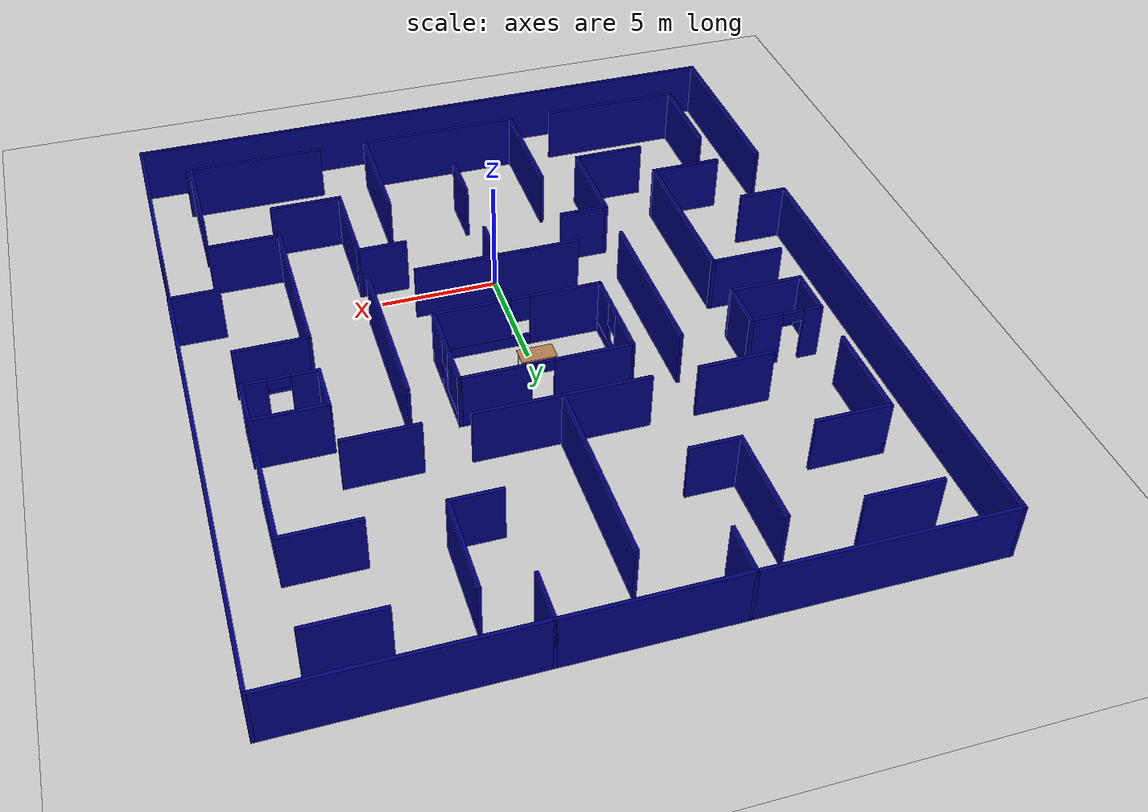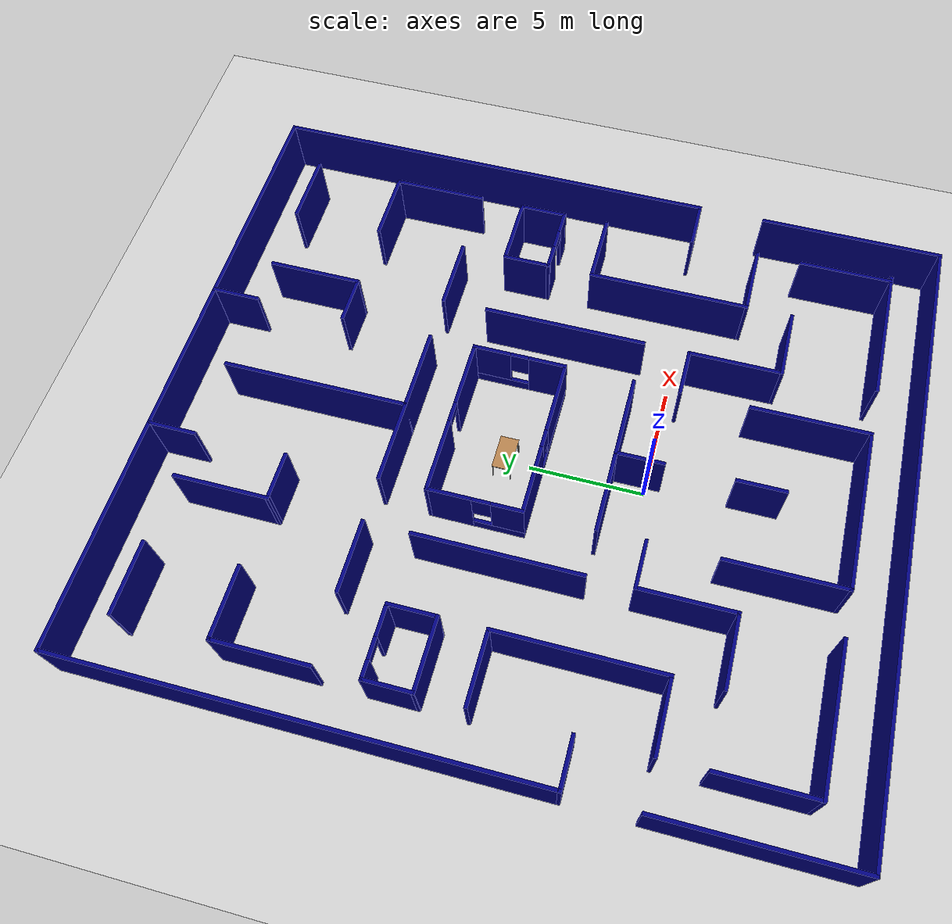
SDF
<sdf version="1.6">
 <world name="default">
  <model name="ground_plane">
   <static>1</static>
   <link name="link">
    <collision name="collision">
     <geometry><plane><normal>0 0 1</normal><size>100 100</size></plane></geometry>
     <surface><friction><ode><mu>100</mu><mu2>50</mu2></ode></friction></surface>
    </collision>
    <visual name="visual">
     <cast_shadows>0</cast_shadows>
     <geometry><plane><normal>0 0 1</normal><size>100 100</size></plane></geometry>
     <material>
      <script><uri>file://media/materials/scripts/gazebo.material</uri><name>Gazebo/Grey</name></script>
     </material>
    </visual>
   </link>
  </model>
  <model name="maze">
   <pose>0.267144 4.9154 0.2059 0 -0 0</pose>
   <link name="Wall_0">
    <collision name="Wall_0_Collision">
     <geometry><box><size>27.14 0.15 2.5</size></box></geometry>
     <pose>0 0 1.25 0 -0 0</pose>
    </collision>
    <visual name="Wall_0_Visual">
     <pose>0 0 1.25 0 -0 0</pose>
     <geometry><box><size>27.14 0.15 2.5</size></box></geometry>
     <material>
      <script><uri>file://media/materials/scripts/gazebo.material</uri><name>Gazebo/Grey</name></script>
      <ambient>0 0 0.498039 1</ambient>
     </material>
     <meta><layer>0</layer></meta>
    </visual>
    <pose>0.004974 -15.5 0 0 -0 0.000741</pose>
   </link>
   <link name="Wall_10">
    <collision name="Wall_10_Collision">
     <geometry><box><size>2.15 0.15 2.5</size></box></geometry>
     <pose>0 0 1.25 0 -0 0</pose>
    </collision>
    <visual name="Wall_10_Visual">
     <pose>0 0 1.25 0 -0 0</pose>
     <geometry><box><size>2.15 0.15 2.5</size></box></geometry>
     <material>
      <script><uri>file://media/materials/scripts/gazebo.material</uri><name>Gazebo/Grey</name></script>
      <ambient>0 0 0.498039 1</ambient>
     </material>
     <meta><layer>0</layer></meta>
    </visual>
    <pose>-2.6e-05 -9.48997 0 0 -0 1.5708</pose>
   </link>
   <link name="Wall_12">
    <collision name="Wall_12_Collision">
     <geometry><box><size>5.15 0.15 2.5</size></box></geometry>
     <pose>0 0 1.25 0 -0 0</pose>
    </collision>
    <visual name="Wall_12_Visual">
     <pose>0 0 1.25 0 -0 0</pose>
     <geometry><box><size>5.15 0.15 2.5</size></box></geometry>
     <material>
      <script><uri>file://media/materials/scripts/gazebo.material</uri><name>Gazebo/Grey</name></script>
      <ambient>0 0 0.498039 1</ambient>
     </material>
     <meta><layer>0</layer></meta>
    </visual>
    <pose>3.49997 -10.99 0 0 -0 1.5708</pose>
   </link>
   <link name="Wall_14">
    <collision name="Wall_14_Collision">
     <geometry><box><size>5.15 0.15 2.5</size></box></geometry>
     <pose>0 0 1.25 0 -0 0</pose>
    </collision>
    <visual name="Wall_14_Visual">
     <pose>0 0 1.25 0 -0 0</pose>
     <geometry><box><size>5.15 0.15 2.5</size></box></geometry>
     <material>
      <script><uri>file://media/materials/scripts/gazebo.material</uri><name>Gazebo/Grey</name></script>
      <ambient>0 0 0.498039 1</ambient>
     </material>
     <meta><layer>0</layer></meta>
    </visual>
    <pose>-3.50003 -10.99 0 0 -0 1.5708</pose>
   </link>
   <link name="Wall_16">
    <collision name="Wall_16_Collision">
     <geometry><box><size>6.15 0.15 2.5</size></box></geometry>
     <pose>0 0 1.25 0 -0 0</pose>
    </collision>
    <visual name="Wall_16_Visual">
     <pose>0 0 1.25 0 -0 0</pose>
     <geometry><box><size>6.15 0.15 2.5</size></box></geometry>
     <material>
      <script><uri>file://media/materials/scripts/gazebo.material</uri><name>Gazebo/Grey</name></script>
      <ambient>0 0 0.498039 1</ambient>
     </material>
     <meta><layer>0</layer></meta>
    </visual>
    <pose>-8.50003 -13.4895 0 0 -0 0.000167</pose>
   </link>
   <link name="Wall_18">
    <collision name="Wall_18_Collision">
     <geometry><box><size>2.15 0.15 2.5</size></box></geometry>
     <pose>0 0 1.25 0 -0 0</pose>
    </collision>
    <visual name="Wall_18_Visual">
     <pose>0 0 1.25 0 -0 0</pose>
     <geometry><box><size>2.15 0.15 2.5</size></box></geometry>
     <material>
      <script><uri>file://media/materials/scripts/gazebo.material</uri><name>Gazebo/Grey</name></script>
      <ambient>0 0 0.498039 1</ambient>
     </material>
     <meta><layer>0</layer></meta>
    </visual>
    <pose>-12.5 -4.48997 0 0 -0 0</pose>
   </link>
   <link name="Wall_188">
    <collision name="Wall_188_Collision">
     <geometry><box><size>4.15 0.15 2.5</size></box></geometry>
     <pose>0 0 1.25 0 -0 0</pose>
    </collision>
    <visual name="Wall_188_Visual">
     <pose>0 0 1.25 0 -0 0</pose>
     <geometry><box><size>4.15 0.15 2.5</size></box></geometry>
     <material>
      <script><uri>file://media/materials/scripts/gazebo.material</uri><name>Gazebo/Grey</name></script>
      <ambient>0 0 0.498039 1</ambient>
     </material>
     <meta><layer>0</layer></meta>
    </visual>
    <pose>-5.50003 11.51 0 0 -0 1.5708</pose>
   </link>
   <link name="Wall_191">
    <collision name="Wall_191_Collision">
     <geometry><box><size>2.15 0.15 2.5</size></box></geometry>
     <pose>0 0 1.25 0 -0 0</pose>
    </collision>
    <visual name="Wall_191_Visual">
     <pose>0 0 1.25 0 -0 0</pose>
     <geometry><box><size>2.15 0.15 2.5</size></box></geometry>
     <material>
      <script><uri>file://media/materials/scripts/gazebo.material</uri><name>Gazebo/Grey</name></script>
      <ambient>0 0 0.498039 1</ambient>
     </material>
     <meta><layer>0</layer></meta>
    </visual>
    <pose>-4.50003 9.51003 0 0 -0 0</pose>
   </link>
   <link name="Wall_193">
    <collision name="Wall_193_Collision">
     <geometry><box><size>2.15 0.15 2.5</size></box></geometry>
     <pose>0 0 1.25 0 -0 0</pose>
    </collision>
    <visual name="Wall_193_Visual">
     <pose>0 0 1.25 0 -0 0</pose>
     <geometry><box><size>2.15 0.15 2.5</size></box></geometry>
     <material>
      <script><uri>file://media/materials/scripts/gazebo.material</uri><name>Gazebo/Grey</name></script>
      <ambient>0 0 0.498039 1</ambient>
     </material>
     <meta><layer>0</layer></meta>
    </visual>
    <pose>-3.50003 14.51 0 0 -0 1.5708</pose>
   </link>
   <link name="Wall_195">
    <collision name="Wall_195_Collision">
     <geometry><box><size>2.15 0.15 2.5</size></box></geometry>
     <pose>0 0 1.25 0 -0 0</pose>
    </collision>
    <visual name="Wall_195_Visual">
     <pose>0 0 1.25 0 -0 0</pose>
     <geometry><box><size>2.15 0.15 2.5</size></box></geometry>
     <material>
      <script><uri>file://media/materials/scripts/gazebo.material</uri><name>Gazebo/Grey</name></script>
      <ambient>0 0 0.498039 1</ambient>
     </material>
     <meta><layer>0</layer></meta>
    </visual>
    <pose>3.49997 14.51 0 0 0 -1.5708</pose>
   </link>
   <link name="Wall_197">
    <pose>-2.6e-05 -0.489973 0 0 -0 0</pose>
    <visual name="Wall_197_Visual_0">
     <pose>-2.03649 0 1.25 0 -0 0</pose>
     <geometry><box><size>3.07701 0.15 2.5</size></box></geometry>
     <material>
      <script><uri>file://media/materials/scripts/gazebo.material</uri><name>Gazebo/Grey</name></script>
      <ambient>0 0 0.498039 1</ambient>
     </material>
     <meta><layer>0</layer></meta>
    </visual>
    <collision name="Wall_197_Collision_0">
     <geometry><box><size>3.07701 0.15 2.5</size></box></geometry>
     <pose>-2.03649 0 1.25 0 -0 0</pose>
    </collision>
    <visual name="Wall_197_Visual_1">
     <pose>1.53851 0 0.25 0 -0 0</pose>
     <geometry><box><size>4.07299 0.15 0.5</size></box></geometry>
     <material>
      <script><uri>file://media/materials/scripts/gazebo.material</uri><name>Gazebo/Grey</name></script>
      <ambient>0 0 0.498039 1</ambient>
     </material>
     <meta><layer>0</layer></meta>
    </visual>
    <collision name="Wall_197_Collision_1">
     <geometry><box><size>4.07299 0.15 0.5</size></box></geometry>
     <pose>1.53851 0 0.25 0 -0 0</pose>
    </collision>
    <visual name="Wall_197_Visual_2">
     <pose>1.9385 0 1.5 0 -0 0</pose>
     <geometry><box><size>3.27299 0.15 2</size></box></geometry>
     <material>
      <script><uri>file://media/materials/scripts/gazebo.material</uri><name>Gazebo/Grey</name></script>
      <ambient>0 0 0.498039 1</ambient>
     </material>
     <meta><layer>0</layer></meta>
    </visual>
    <collision name="Wall_197_Collision_2">
     <geometry><box><size>3.27299 0.15 2</size></box></geometry>
     <pose>1.9385 0 1.5 0 -0 0</pose>
    </collision>
    <visual name="Wall_197_Visual_3">
     <pose>-0.097991 0 1.9 0 -0 0</pose>
     <geometry><box><size>0.8 0.15 1.2</size></box></geometry>
     <material>
      <script><uri>file://media/materials/scripts/gazebo.material</uri><name>Gazebo/Grey</name></script>
      <ambient>0 0 0.498039 1</ambient>
     </material>
     <meta><layer>0</layer></meta>
    </visual>
    <collision name="Wall_197_Collision_3">
     <geometry><box><size>0.8 0.15 1.2</size></box></geometry>
     <pose>-0.097991 0 1.9 0 -0 0</pose>
    </collision>
   </link>
   <link name="Wall_199">
    <pose>3.49997 1.51003 0 0 -0 1.5708</pose>
    <visual name="Wall_199_Visual_0">
     <pose>-1.2422 0 1.25 0 -0 0</pose>
     <geometry><box><size>1.6656 0.15 2.5</size></box></geometry>
     <material>
      <script><uri>file://media/materials/scripts/gazebo.material</uri><name>Gazebo/Grey</name></script>
      <ambient>0 0 0.498039 1</ambient>
     </material>
     <meta><layer>0</layer></meta>
    </visual>
    <collision name="Wall_199_Collision_0">
     <geometry><box><size>1.6656 0.15 2.5</size></box></geometry>
     <pose>-1.2422 0 1.25 0 -0 0</pose>
    </collision>
    <visual name="Wall_199_Visual_1">
     <pose>0.832802 0 0.25 0 -0 0</pose>
     <geometry><box><size>2.4844 0.15 0.5</size></box></geometry>
     <material>
      <script><uri>file://media/materials/scripts/gazebo.material</uri><name>Gazebo/Grey</name></script>
      <ambient>0 0 0.498039 1</ambient>
     </material>
     <meta><layer>0</layer></meta>
    </visual>
    <collision name="Wall_199_Collision_1">
     <geometry><box><size>2.4844 0.15 0.5</size></box></geometry>
     <pose>0.832802 0 0.25 0 -0 0</pose>
    </collision>
    <visual name="Wall_199_Visual_2">
     <pose>1.2328 0 1.5 0 -0 0</pose>
     <geometry><box><size>1.6844 0.15 2</size></box></geometry>
     <material>
      <script><uri>file://media/materials/scripts/gazebo.material</uri><name>Gazebo/Grey</name></script>
      <ambient>0 0 0.498039 1</ambient>
     </material>
     <meta><layer>0</layer></meta>
    </visual>
    <collision name="Wall_199_Collision_2">
     <geometry><box><size>1.6844 0.15 2</size></box></geometry>
     <pose>1.2328 0 1.5 0 -0 0</pose>
    </collision>
    <visual name="Wall_199_Visual_3">
     <pose>-0.009396 0 1.9 0 -0 0</pose>
     <geometry><box><size>0.8 0.15 1.2</size></box></geometry>
     <material>
      <script><uri>file://media/materials/scripts/gazebo.material</uri><name>Gazebo/Grey</name></script>
      <ambient>0 0 0.498039 1</ambient>
     </material>
     <meta><layer>0</layer></meta>
    </visual>
    <collision name="Wall_199_Collision_3">
     <geometry><box><size>0.8 0.15 1.2</size></box></geometry>
     <pose>-0.009396 0 1.9 0 -0 0</pose>
    </collision>
   </link>
   <link name="Wall_2">
    <collision name="Wall_2_Collision">
     <geometry><box><size>8.15 0.15 2.5</size></box></geometry>
     <pose>0 0 1.25 0 -0 0</pose>
    </collision>
    <visual name="Wall_2_Visual">
     <pose>0 0 1.25 0 -0 0</pose>
     <geometry><box><size>8.15 0.15 2.5</size></box></geometry>
     <material>
      <script><uri>file://media/materials/scripts/gazebo.material</uri><name>Gazebo/Grey</name></script>
      <ambient>0 0 0.498039 1</ambient>
     </material>
     <meta><layer>0</layer></meta>
    </visual>
    <pose>-13.5 -11.49 0 0 -0 1.5708</pose>
   </link>
   <link name="Wall_20">
    <collision name="Wall_20_Collision">
     <geometry><box><size>20.15 0.15 2.5</size></box></geometry>
     <pose>0 0 1.25 0 -0 0</pose>
    </collision>
    <visual name="Wall_20_Visual">
     <pose>0 0 1.25 0 -0 0</pose>
     <geometry><box><size>20.15 0.15 2.5</size></box></geometry>
     <material>
      <script><uri>file://media/materials/scripts/gazebo.material</uri><name>Gazebo/Grey</name></script>
      <ambient>0 0 0.498039 1</ambient>
     </material>
     <meta><layer>0</layer></meta>
    </visual>
    <pose>13.5 5.51003 0 0 -0 1.5708</pose>
   </link>
   <link name="Wall_201">
    <pose>-3.50003 1.51003 0 0 0 -1.5708</pose>
    <visual name="Wall_201_Visual_0">
     <pose>-1.09685 0 1.25 0 -0 0</pose>
     <geometry><box><size>1.9563 0.15 2.5</size></box></geometry>
     <material>
      <script><uri>file://media/materials/scripts/gazebo.material</uri><name>Gazebo/Grey</name></script>
      <ambient>0 0 0.498039 1</ambient>
     </material>
     <meta><layer>0</layer></meta>
    </visual>
    <collision name="Wall_201_Collision_0">
     <geometry><box><size>1.9563 0.15 2.5</size></box></geometry>
     <pose>-1.09685 0 1.25 0 -0 0</pose>
    </collision>
    <visual name="Wall_201_Visual_1">
     <pose>0.97815 0 0.25 0 -0 0</pose>
     <geometry><box><size>2.1937 0.15 0.5</size></box></geometry>
     <material>
      <script><uri>file://media/materials/scripts/gazebo.material</uri><name>Gazebo/Grey</name></script>
      <ambient>0 0 0.498039 1</ambient>
     </material>
     <meta><layer>0</layer></meta>
    </visual>
    <collision name="Wall_201_Collision_1">
     <geometry><box><size>2.1937 0.15 0.5</size></box></geometry>
     <pose>0.97815 0 0.25 0 -0 0</pose>
    </collision>
    <visual name="Wall_201_Visual_2">
     <pose>1.37815 0 1.5 0 -0 0</pose>
     <geometry><box><size>1.3937 0.15 2</size></box></geometry>
     <material>
      <script><uri>file://media/materials/scripts/gazebo.material</uri><name>Gazebo/Grey</name></script>
      <ambient>0 0 0.498039 1</ambient>
     </material>
     <meta><layer>0</layer></meta>
    </visual>
    <collision name="Wall_201_Collision_2">
     <geometry><box><size>1.3937 0.15 2</size></box></geometry>
     <pose>1.37815 0 1.5 0 -0 0</pose>
    </collision>
    <visual name="Wall_201_Visual_3">
     <pose>0.2813 0 1.9 0 -0 0</pose>
     <geometry><box><size>0.8 0.15 1.2</size></box></geometry>
     <material>
      <script><uri>file://media/materials/scripts/gazebo.material</uri><name>Gazebo/Grey</name></script>
      <ambient>0 0 0.498039 1</ambient>
     </material>
     <meta><layer>0</layer></meta>
    </visual>
    <collision name="Wall_201_Collision_3">
     <geometry><box><size>0.8 0.15 1.2</size></box></geometry>
     <pose>0.2813 0 1.9 0 -0 0</pose>
    </collision>
   </link>
   <link name="Wall_202">
    <collision name="Wall_202_Collision">
     <geometry><box><size>0.15 0.15 2.5</size></box></geometry>
     <pose>0 0 1.25 0 -0 0</pose>
    </collision>
    <visual name="Wall_202_Visual">
     <pose>0 0 1.25 0 -0 0</pose>
     <geometry><box><size>0.15 0.15 2.5</size></box></geometry>
     <material>
      <script><uri>file://media/materials/scripts/gazebo.material</uri><name>Gazebo/Grey</name></script>
      <ambient>0 0 0.498039 1</ambient>
     </material>
     <meta><layer>0</layer></meta>
    </visual>
    <pose>-3.50003 -0.489973 0 0 -0 0</pose>
   </link>
   <link name="Wall_204">
    <collision name="Wall_204_Collision">
     <geometry><box><size>4.15 0.15 2.5</size></box></geometry>
     <pose>0 0 1.25 0 -0 0</pose>
    </collision>
    <visual name="Wall_204_Visual">
     <pose>0 0 1.25 0 -0 0</pose>
     <geometry><box><size>4.15 0.15 2.5</size></box></geometry>
     <material>
      <script><uri>file://media/materials/scripts/gazebo.material</uri><name>Gazebo/Grey</name></script>
      <ambient>0 0 0.498039 1</ambient>
     </material>
     <meta><layer>0</layer></meta>
    </visual>
    <pose>5.49997 11.51 0 0 -0 1.5708</pose>
   </link>
   <link name="Wall_206">
    <collision name="Wall_206_Collision">
     <geometry><box><size>2.15 0.15 2.5</size></box></geometry>
     <pose>0 0 1.25 0 -0 0</pose>
    </collision>
    <visual name="Wall_206_Visual">
     <pose>0 0 1.25 0 -0 0</pose>
     <geometry><box><size>2.15 0.15 2.5</size></box></geometry>
     <material>
      <script><uri>file://media/materials/scripts/gazebo.material</uri><name>Gazebo/Grey</name></script>
      <ambient>0 0 0.498039 1</ambient>
     </material>
     <meta><layer>0</layer></meta>
    </visual>
    <pose>4.49997 9.51003 0 0 -0 0</pose>
   </link>
   <link name="Wall_208">
    <collision name="Wall_208_Collision">
     <geometry><box><size>8.15 0.15 2.5</size></box></geometry>
     <pose>0 0 1.25 0 -0 0</pose>
    </collision>
    <visual name="Wall_208_Visual">
     <pose>0 0 1.25 0 -0 0</pose>
     <geometry><box><size>8.15 0.15 2.5</size></box></geometry>
     <material>
      <script><uri>file://media/materials/scripts/gazebo.material</uri><name>Gazebo/Grey</name></script>
      <ambient>0 0 0.498039 1</ambient>
     </material>
     <meta><layer>0</layer></meta>
    </visual>
    <pose>-2.6e-05 9.51003 0 0 -0 1.5708</pose>
   </link>
   <link name="Wall_210">
    <collision name="Wall_210_Collision">
     <geometry><box><size>7.15 0.15 2.5</size></box></geometry>
     <pose>0 0 1.25 0 -0 0</pose>
    </collision>
    <visual name="Wall_210_Visual">
     <pose>0 0 1.25 0 -0 0</pose>
     <geometry><box><size>7.15 0.15 2.5</size></box></geometry>
     <material>
      <script><uri>file://media/materials/scripts/gazebo.material</uri><name>Gazebo/Grey</name></script>
      <ambient>0 0 0.498039 1</ambient>
     </material>
     <meta><layer>0</layer></meta>
    </visual>
    <pose>-2.6e-05 5.51003 0 0 -0 0</pose>
   </link>
   <link name="Wall_212">
    <pose>-2.6e-05 3.51003 0 0 -0 0</pose>
    <visual name="Wall_212_Visual_0">
     <pose>-1.93418 0 1.25 0 -0 0</pose>
     <geometry><box><size>3.28164 0.15 2.5</size></box></geometry>
     <material>
      <script><uri>file://media/materials/scripts/gazebo.material</uri><name>Gazebo/Grey</name></script>
      <ambient>0 0 0.498039 1</ambient>
     </material>
     <meta><layer>0</layer></meta>
    </visual>
    <collision name="Wall_212_Collision_0">
     <geometry><box><size>3.28164 0.15 2.5</size></box></geometry>
     <pose>-1.93418 0 1.25 0 -0 0</pose>
    </collision>
    <visual name="Wall_212_Visual_1">
     <pose>2.09082 0 1.25 0 -0 0</pose>
     <geometry><box><size>2.96836 0.15 2.5</size></box></geometry>
     <material>
      <script><uri>file://media/materials/scripts/gazebo.material</uri><name>Gazebo/Grey</name></script>
      <ambient>0 0 0.498039 1</ambient>
     </material>
     <meta><layer>0</layer></meta>
    </visual>
    <collision name="Wall_212_Collision_1">
     <geometry><box><size>2.96836 0.15 2.5</size></box></geometry>
     <pose>2.09082 0 1.25 0 -0 0</pose>
    </collision>
    <visual name="Wall_212_Visual_2">
     <pose>0.156638 0 2.25 0 -0 0</pose>
     <geometry><box><size>0.9 0.15 0.5</size></box></geometry>
     <material>
      <script><uri>file://media/materials/scripts/gazebo.material</uri><name>Gazebo/Grey</name></script>
      <ambient>0 0 0.498039 1</ambient>
     </material>
     <meta><layer>0</layer></meta>
    </visual>
    <collision name="Wall_212_Collision_2">
     <geometry><box><size>0.9 0.15 0.5</size></box></geometry>
     <pose>0.156638 0 2.25 0 -0 0</pose>
    </collision>
   </link>
   <link name="Wall_215">
    <collision name="Wall_215_Collision">
     <geometry><box><size>3.15 0.15 2.5</size></box></geometry>
     <pose>0 0 1.25 0 -0 0</pose>
    </collision>
    <visual name="Wall_215_Visual">
     <pose>0 0 1.25 0 -0 0</pose>
     <geometry><box><size>3.15 0.15 2.5</size></box></geometry>
     <material>
      <script><uri>file://media/materials/scripts/gazebo.material</uri><name>Gazebo/Grey</name></script>
      <ambient>0 0 0.498039 1</ambient>
     </material>
     <meta><layer>0</layer></meta>
    </visual>
    <pose>6.99997 5.51003 0 0 -0 0</pose>
   </link>
   <link name="Wall_217">
    <collision name="Wall_217_Collision">
     <geometry><box><size>7.15 0.15 2.5</size></box></geometry>
     <pose>0 0 1.25 0 -0 0</pose>
    </collision>
    <visual name="Wall_217_Visual">
     <pose>0 0 1.25 0 -0 0</pose>
     <geometry><box><size>7.15 0.15 2.5</size></box></geometry>
     <material>
      <script><uri>file://media/materials/scripts/gazebo.material</uri><name>Gazebo/Grey</name></script>
      <ambient>0 0 0.498039 1</ambient>
     </material>
     <meta><layer>0</layer></meta>
    </visual>
    <pose>5.49997 0.010027 0 0 -0 1.5708</pose>
   </link>
   <link name="Wall_219">
    <collision name="Wall_219_Collision">
     <geometry><box><size>3.15 0.15 2.5</size></box></geometry>
     <pose>0 0 1.25 0 -0 0</pose>
    </collision>
    <visual name="Wall_219_Visual">
     <pose>0 0 1.25 0 -0 0</pose>
     <geometry><box><size>3.15 0.15 2.5</size></box></geometry>
     <material>
      <script><uri>file://media/materials/scripts/gazebo.material</uri><name>Gazebo/Grey</name></script>
      <ambient>0 0 0.498039 1</ambient>
     </material>
     <meta><layer>0</layer></meta>
    </visual>
    <pose>9.99997 -0.489973 0 0 -0 0</pose>
   </link>
   <link name="Wall_22">
    <collision name="Wall_22_Collision">
     <geometry><box><size>4.15 0.15 2.5</size></box></geometry>
     <pose>0 0 1.25 0 -0 0</pose>
    </collision>
    <visual name="Wall_22_Visual">
     <pose>0 0 1.25 0 -0 0</pose>
     <geometry><box><size>4.15 0.15 2.5</size></box></geometry>
     <material>
      <script><uri>file://media/materials/scripts/gazebo.material</uri><name>Gazebo/Grey</name></script>
      <ambient>0 0 0.498039 1</ambient>
     </material>
     <meta><layer>0</layer></meta>
    </visual>
    <pose>-11.5 -11.49 0 0 -0 1.5708</pose>
   </link>
   <link name="Wall_221">
    <collision name="Wall_221_Collision">
     <geometry><box><size>7.15 0.15 2.5</size></box></geometry>
     <pose>0 0 1.25 0 -0 0</pose>
    </collision>
    <visual name="Wall_221_Visual">
     <pose>0 0 1.25 0 -0 0</pose>
     <geometry><box><size>7.15 0.15 2.5</size></box></geometry>
     <material>
      <script><uri>file://media/materials/scripts/gazebo.material</uri><name>Gazebo/Grey</name></script>
      <ambient>0 0 0.498039 1</ambient>
     </material>
     <meta><layer>0</layer></meta>
    </visual>
    <pose>8.49997 -3.98997 0 0 -0 1.5708</pose>
   </link>
   <link name="Wall_223">
    <collision name="Wall_223_Collision">
     <geometry><box><size>3.15 0.15 2.5</size></box></geometry>
     <pose>0 0 1.25 0 -0 0</pose>
    </collision>
    <visual name="Wall_223_Visual">
     <pose>0 0 1.25 0 -0 0</pose>
     <geometry><box><size>3.15 0.15 2.5</size></box></geometry>
     <material>
      <script><uri>file://media/materials/scripts/gazebo.material</uri><name>Gazebo/Grey</name></script>
      <ambient>0 0 0.498039 1</ambient>
     </material>
     <meta><layer>0</layer></meta>
    </visual>
    <pose>9.99997 -7.48997 0 0 -0 0</pose>
   </link>
   <link name="Wall_225">
    <collision name="Wall_225_Collision">
     <geometry><box><size>2.15 0.15 2.5</size></box></geometry>
     <pose>0 0 1.25 0 -0 0</pose>
    </collision>
    <visual name="Wall_225_Visual">
     <pose>0 0 1.25 0 -0 0</pose>
     <geometry><box><size>2.15 0.15 2.5</size></box></geometry>
     <material>
      <script><uri>file://media/materials/scripts/gazebo.material</uri><name>Gazebo/Grey</name></script>
      <ambient>0 0 0.498039 1</ambient>
     </material>
     <meta><layer>0</layer></meta>
    </visual>
    <pose>12.5 -4.48997 0 0 -0 0</pose>
   </link>
   <link name="Wall_227">
    <collision name="Wall_227_Collision">
     <geometry><box><size>2.15 0.15 2.5</size></box></geometry>
     <pose>0 0 1.25 0 -0 0</pose>
    </collision>
    <visual name="Wall_227_Visual">
     <pose>0 0 1.25 0 -0 0</pose>
     <geometry><box><size>2.15 0.15 2.5</size></box></geometry>
     <material>
      <script><uri>file://media/materials/scripts/gazebo.material</uri><name>Gazebo/Grey</name></script>
      <ambient>0 0 0.498039 1</ambient>
     </material>
     <meta><layer>0</layer></meta>
    </visual>
    <pose>8.49997 2.51003 0 0 -0 1.5708</pose>
   </link>
   <link name="Wall_229">
    <collision name="Wall_229_Collision">
     <geometry><box><size>2.15 0.15 2.5</size></box></geometry>
     <pose>0 0 1.25 0 -0 0</pose>
    </collision>
    <visual name="Wall_229_Visual">
     <pose>0 0 1.25 0 -0 0</pose>
     <geometry><box><size>2.15 0.15 2.5</size></box></geometry>
     <material>
      <script><uri>file://media/materials/scripts/gazebo.material</uri><name>Gazebo/Grey</name></script>
      <ambient>0 0 0.498039 1</ambient>
     </material>
     <meta><layer>0</layer></meta>
    </visual>
    <pose>11.5 2.51003 0 0 -0 1.5708</pose>
   </link>
   <link name="Wall_231">
    <pose>9.99997 1.51003 0 0 -0 0</pose>
    <visual name="Wall_231_Visual_0">
     <pose>-0.98595 0 1.25 0 -0 0</pose>
     <geometry><box><size>1.1781 0.15 2.5</size></box></geometry>
     <material>
      <script><uri>file://media/materials/scripts/gazebo.material</uri><name>Gazebo/Grey</name></script>
      <ambient>0 0 0.498039 1</ambient>
     </material>
     <meta><layer>0</layer></meta>
    </visual>
    <collision name="Wall_231_Collision_0">
     <geometry><box><size>1.1781 0.15 2.5</size></box></geometry>
     <pose>-0.98595 0 1.25 0 -0 0</pose>
    </collision>
    <visual name="Wall_231_Visual_1">
     <pose>1.03905 0 1.25 0 -0 0</pose>
     <geometry><box><size>1.0719 0.15 2.5</size></box></geometry>
     <material>
      <script><uri>file://media/materials/scripts/gazebo.material</uri><name>Gazebo/Grey</name></script>
      <ambient>0 0 0.498039 1</ambient>
     </material>
     <meta><layer>0</layer></meta>
    </visual>
    <collision name="Wall_231_Collision_1">
     <geometry><box><size>1.0719 0.15 2.5</size></box></geometry>
     <pose>1.03905 0 1.25 0 -0 0</pose>
    </collision>
    <visual name="Wall_231_Visual_2">
     <pose>0.053101 0 2.25 0 -0 0</pose>
     <geometry><box><size>0.9 0.15 0.5</size></box></geometry>
     <material>
      <script><uri>file://media/materials/scripts/gazebo.material</uri><name>Gazebo/Grey</name></script>
      <ambient>0 0 0.498039 1</ambient>
     </material>
     <meta><layer>0</layer></meta>
    </visual>
    <collision name="Wall_231_Collision_2">
     <geometry><box><size>0.9 0.15 0.5</size></box></geometry>
     <pose>0.053101 0 2.25 0 -0 0</pose>
    </collision>
   </link>
   <link name="Wall_233">
    <collision name="Wall_233_Collision">
     <geometry><box><size>3.15 0.15 2.5</size></box></geometry>
     <pose>0 0 1.25 0 -0 0</pose>
    </collision>
    <visual name="Wall_233_Visual">
     <pose>0 0 1.25 0 -0 0</pose>
     <geometry><box><size>3.15 0.15 2.5</size></box></geometry>
     <material>
      <script><uri>file://media/materials/scripts/gazebo.material</uri><name>Gazebo/Grey</name></script>
      <ambient>0 0 0.498039 1</ambient>
     </material>
     <meta><layer>0</layer></meta>
    </visual>
    <pose>9.99997 3.51003 0 0 -0 0</pose>
   </link>
   <link name="Wall_235">
    <collision name="Wall_235_Collision">
     <geometry><box><size>3.15 0.15 2.5</size></box></geometry>
     <pose>0 0 1.25 0 -0 0</pose>
    </collision>
    <visual name="Wall_235_Visual">
     <pose>0 0 1.25 0 -0 0</pose>
     <geometry><box><size>3.15 0.15 2.5</size></box></geometry>
     <material>
      <script><uri>file://media/materials/scripts/gazebo.material</uri><name>Gazebo/Grey</name></script>
      <ambient>0 0 0.498039 1</ambient>
     </material>
     <meta><layer>0</layer></meta>
    </visual>
    <pose>9.99997 9.51003 0 0 -0 0</pose>
   </link>
   <link name="Wall_236">
    <collision name="Wall_236_Collision">
     <geometry><box><size>4.15 0.15 2.5</size></box></geometry>
     <pose>0 0 1.25 0 -0 0</pose>
    </collision>
    <visual name="Wall_236_Visual">
     <pose>0 0 1.25 0 -0 0</pose>
     <geometry><box><size>4.15 0.15 2.5</size></box></geometry>
     <material>
      <script><uri>file://media/materials/scripts/gazebo.material</uri><name>Gazebo/Grey</name></script>
      <ambient>0 0 0.498039 1</ambient>
     </material>
     <meta><layer>0</layer></meta>
    </visual>
    <pose>11.5 7.51003 0 0 0 -1.5708</pose>
   </link>
   <link name="Wall_238">
    <collision name="Wall_238_Collision">
     <geometry><box><size>3.15 0.15 2.5</size></box></geometry>
     <pose>0 0 1.25 0 -0 0</pose>
    </collision>
    <visual name="Wall_238_Visual">
     <pose>0 0 1.25 0 -0 0</pose>
     <geometry><box><size>3.15 0.15 2.5</size></box></geometry>
     <material>
      <script><uri>file://media/materials/scripts/gazebo.material</uri><name>Gazebo/Grey</name></script>
      <ambient>0 0 0.498039 1</ambient>
     </material>
     <meta><layer>0</layer></meta>
    </visual>
    <pose>9.99997 13.51 0 0 -0 0</pose>
   </link>
   <link name="Wall_24">
    <collision name="Wall_24_Collision">
     <geometry><box><size>7.15 0.15 2.5</size></box></geometry>
     <pose>0 0 1.25 0 -0 0</pose>
    </collision>
    <visual name="Wall_24_Visual">
     <pose>0 0 1.25 0 -0 0</pose>
     <geometry><box><size>7.15 0.15 2.5</size></box></geometry>
     <material>
      <script><uri>file://media/materials/scripts/gazebo.material</uri><name>Gazebo/Grey</name></script>
      <ambient>0 0 0.498039 1</ambient>
     </material>
     <meta><layer>0</layer></meta>
    </visual>
    <pose>-2.6e-05 -13.49 0 0 -0 0</pose>
   </link>
   <link name="Wall_240">
    <collision name="Wall_240_Collision">
     <geometry><box><size>7.15 0.15 2.5</size></box></geometry>
     <pose>0 0 1.25 0 -0 0</pose>
    </collision>
    <visual name="Wall_240_Visual">
     <pose>0 0 1.25 0 -0 0</pose>
     <geometry><box><size>7.15 0.15 2.5</size></box></geometry>
     <material>
      <script><uri>file://media/materials/scripts/gazebo.material</uri><name>Gazebo/Grey</name></script>
      <ambient>0 0 0.498039 1</ambient>
     </material>
     <meta><layer>0</layer></meta>
    </visual>
    <pose>-2.6e-05 -3.48997 0 0 -0 0</pose>
   </link>
   <link name="Wall_242">
    <collision name="Wall_242_Collision">
     <geometry><box><size>2.15 0.15 2.5</size></box></geometry>
     <pose>0 0 1.25 0 -0 0</pose>
    </collision>
    <visual name="Wall_242_Visual">
     <pose>0 0 1.25 0 -0 0</pose>
     <geometry><box><size>2.15 0.15 2.5</size></box></geometry>
     <material>
      <script><uri>file://media/materials/scripts/gazebo.material</uri><name>Gazebo/Grey</name></script>
      <ambient>0 0 0.498039 1</ambient>
     </material>
     <meta><layer>0</layer></meta>
    </visual>
    <pose>-2.6e-05 -4.48997 0 0 0 -1.5708</pose>
   </link>
   <link name="Wall_26">
    <collision name="Wall_26_Collision">
     <geometry><box><size>6.15 0.15 2.5</size></box></geometry>
     <pose>0 0 1.25 0 -0 0</pose>
    </collision>
    <visual name="Wall_26_Visual">
     <pose>0 0 1.25 0 -0 0</pose>
     <geometry><box><size>6.15 0.15 2.5</size></box></geometry>
     <material>
      <script><uri>file://media/materials/scripts/gazebo.material</uri><name>Gazebo/Grey</name></script>
      <ambient>0 0 0.498039 1</ambient>
     </material>
     <meta><layer>0</layer></meta>
    </visual>
    <pose>8.68456 -13.49 0 0 -0 0</pose>
   </link>
   <link name="Wall_28">
    <collision name="Wall_28_Collision">
     <geometry><box><size>3.15 0.15 2.5</size></box></geometry>
     <pose>0 0 1.25 0 -0 0</pose>
    </collision>
    <visual name="Wall_28_Visual">
     <pose>0 0 1.25 0 -0 0</pose>
     <geometry><box><size>3.15 0.15 2.5</size></box></geometry>
     <material>
      <script><uri>file://media/materials/scripts/gazebo.material</uri><name>Gazebo/Grey</name></script>
      <ambient>0 0 0.498039 1</ambient>
     </material>
     <meta><layer>0</layer></meta>
    </visual>
    <pose>-10 -7.48997 0 0 -0 0</pose>
   </link>
   <link name="Wall_30">
    <collision name="Wall_30_Collision">
     <geometry><box><size>2.15 0.15 2.5</size></box></geometry>
     <pose>0 0 1.25 0 -0 0</pose>
    </collision>
    <visual name="Wall_30_Visual">
     <pose>0 0 1.25 0 -0 0</pose>
     <geometry><box><size>2.15 0.15 2.5</size></box></geometry>
     <material>
      <script><uri>file://media/materials/scripts/gazebo.material</uri><name>Gazebo/Grey</name></script>
      <ambient>0 0 0.498039 1</ambient>
     </material>
     <meta><layer>0</layer></meta>
    </visual>
    <pose>4.49997 -5.48997 0 0 -0 0</pose>
   </link>
   <link name="Wall_32">
    <collision name="Wall_32_Collision">
     <geometry><box><size>3.15 0.15 2.5</size></box></geometry>
     <pose>0 0 1.25 0 -0 0</pose>
    </collision>
    <visual name="Wall_32_Visual">
     <pose>0 0 1.25 0 -0 0</pose>
     <geometry><box><size>3.15 0.15 2.5</size></box></geometry>
     <material>
      <script><uri>file://media/materials/scripts/gazebo.material</uri><name>Gazebo/Grey</name></script>
      <ambient>0 0 0.498039 1</ambient>
     </material>
     <meta><layer>0</layer></meta>
    </visual>
    <pose>6.99997 -9.48997 0 0 -0 0</pose>
   </link>
   <link name="Wall_34">
    <collision name="Wall_34_Collision">
     <geometry><box><size>4.15 0.15 2.5</size></box></geometry>
     <pose>0 0 1.25 0 -0 0</pose>
    </collision>
    <visual name="Wall_34_Visual">
     <pose>0 0 1.25 0 -0 0</pose>
     <geometry><box><size>4.15 0.15 2.5</size></box></geometry>
     <material>
      <script><uri>file://media/materials/scripts/gazebo.material</uri><name>Gazebo/Grey</name></script>
      <ambient>0 0 0.498039 1</ambient>
     </material>
     <meta><layer>0</layer></meta>
    </visual>
    <pose>5.49997 -7.48997 0 0 -0 1.5708</pose>
   </link>
   <link name="Wall_36">
    <collision name="Wall_36_Collision">
     <geometry><box><size>2.15 0.15 2.5</size></box></geometry>
     <pose>0 0 1.25 0 -0 0</pose>
    </collision>
    <visual name="Wall_36_Visual">
     <pose>0 0 1.25 0 -0 0</pose>
     <geometry><box><size>2.15 0.15 2.5</size></box></geometry>
     <material>
      <script><uri>file://media/materials/scripts/gazebo.material</uri><name>Gazebo/Grey</name></script>
      <ambient>0 0 0.498039 1</ambient>
     </material>
     <meta><layer>0</layer></meta>
    </visual>
    <pose>-4.50003 -5.48997 0 0 -0 0</pose>
   </link>
   <link name="Wall_38">
    <collision name="Wall_38_Collision">
     <geometry><box><size>3.15 0.15 2.5</size></box></geometry>
     <pose>0 0 1.25 0 -0 0</pose>
    </collision>
    <visual name="Wall_38_Visual">
     <pose>0 0 1.25 0 -0 0</pose>
     <geometry><box><size>3.15 0.15 2.5</size></box></geometry>
     <material>
      <script><uri>file://media/materials/scripts/gazebo.material</uri><name>Gazebo/Grey</name></script>
      <ambient>0 0 0.498039 1</ambient>
     </material>
     <meta><layer>0</layer></meta>
    </visual>
    <pose>-7.00003 -9.48997 0 0 -0 0</pose>
   </link>
   <link name="Wall_4">
    <collision name="Wall_4_Collision">
     <geometry><box><size>8.15 0.15 2.5</size></box></geometry>
     <pose>0 0 1.25 0 -0 0</pose>
    </collision>
    <visual name="Wall_4_Visual">
     <pose>0 0 1.25 0 -0 0</pose>
     <geometry><box><size>8.15 0.15 2.5</size></box></geometry>
     <material>
      <script><uri>file://media/materials/scripts/gazebo.material</uri><name>Gazebo/Grey</name></script>
      <ambient>0 0 0.498039 1</ambient>
     </material>
     <meta><layer>0</layer></meta>
    </visual>
    <pose>13.5 -11.49 0 0 -0 1.5708</pose>
   </link>
   <link name="Wall_40">
    <collision name="Wall_40_Collision">
     <geometry><box><size>4.15 0.15 2.5</size></box></geometry>
     <pose>0 0 1.25 0 -0 0</pose>
    </collision>
    <visual name="Wall_40_Visual">
     <pose>0 0 1.25 0 -0 0</pose>
     <geometry><box><size>4.15 0.15 2.5</size></box></geometry>
     <material>
      <script><uri>file://media/materials/scripts/gazebo.material</uri><name>Gazebo/Grey</name></script>
      <ambient>0 0 0.498039 1</ambient>
     </material>
     <meta><layer>0</layer></meta>
    </visual>
    <pose>-5.50003 -7.48997 0 0 -0 1.5708</pose>
   </link>
   <link name="Wall_42">
    <collision name="Wall_42_Collision">
     <geometry><box><size>2.15 0.15 2.5</size></box></geometry>
     <pose>0 0 1.25 0 -0 0</pose>
    </collision>
    <visual name="Wall_42_Visual">
     <pose>0 0 1.25 0 -0 0</pose>
     <geometry><box><size>2.15 0.15 2.5</size></box></geometry>
     <material>
      <script><uri>file://media/materials/scripts/gazebo.material</uri><name>Gazebo/Grey</name></script>
      <ambient>0 0 0.498039 1</ambient>
     </material>
     <meta><layer>0</layer></meta>
    </visual>
    <pose>-8.50003 2.51003 0 0 -0 1.5708</pose>
   </link>
   <link name="Wall_44">
    <collision name="Wall_44_Collision">
     <geometry><box><size>7.15 0.15 2.5</size></box></geometry>
     <pose>0 0 1.25 0 -0 0</pose>
    </collision>
    <visual name="Wall_44_Visual">
     <pose>0 0 1.25 0 -0 0</pose>
     <geometry><box><size>7.15 0.15 2.5</size></box></geometry>
     <material>
      <script><uri>file://media/materials/scripts/gazebo.material</uri><name>Gazebo/Grey</name></script>
      <ambient>0 0 0.498039 1</ambient>
     </material>
     <meta><layer>0</layer></meta>
    </visual>
    <pose>-8.50003 -3.98997 0 0 -0 1.5708</pose>
   </link>
   <link name="Wall_46">
    <collision name="Wall_46_Collision">
     <geometry><box><size>3.15 0.15 2.5</size></box></geometry>
     <pose>0 0 1.25 0 -0 0</pose>
    </collision>
    <visual name="Wall_46_Visual">
     <pose>0 0 1.25 0 -0 0</pose>
     <geometry><box><size>3.15 0.15 2.5</size></box></geometry>
     <material>
      <script><uri>file://media/materials/scripts/gazebo.material</uri><name>Gazebo/Grey</name></script>
      <ambient>0 0 0.498039 1</ambient>
     </material>
     <meta><layer>0</layer></meta>
    </visual>
    <pose>-10 -0.489973 0 0 -0 0</pose>
   </link>
   <link name="Wall_48">
    <collision name="Wall_48_Collision">
     <geometry><box><size>3.15 0.15 2.5</size></box></geometry>
     <pose>0 0 1.25 0 -0 0</pose>
    </collision>
    <visual name="Wall_48_Visual">
     <pose>0 0 1.25 0 -0 0</pose>
     <geometry><box><size>3.15 0.15 2.5</size></box></geometry>
     <material>
      <script><uri>file://media/materials/scripts/gazebo.material</uri><name>Gazebo/Grey</name></script>
      <ambient>0 0 0.498039 1</ambient>
     </material>
     <meta><layer>0</layer></meta>
    </visual>
    <pose>-10 1.51003 0 0 -0 0</pose>
   </link>
   <link name="Wall_50">
    <collision name="Wall_50_Collision">
     <geometry><box><size>7.15 0.15 2.5</size></box></geometry>
     <pose>0 0 1.25 0 -0 0</pose>
    </collision>
    <visual name="Wall_50_Visual">
     <pose>0 0 1.25 0 -0 0</pose>
     <geometry><box><size>7.15 0.15 2.5</size></box></geometry>
     <material>
      <script><uri>file://media/materials/scripts/gazebo.material</uri><name>Gazebo/Grey</name></script>
      <ambient>0 0 0.498039 1</ambient>
     </material>
     <meta><layer>0</layer></meta>
    </visual>
    <pose>-5.50003 0.010027 0 0 -0 1.5708</pose>
   </link>
   <link name="Wall_52">
    <collision name="Wall_52_Collision">
     <geometry><box><size>4.15 0.15 2.5</size></box></geometry>
     <pose>0 0 1.25 0 -0 0</pose>
    </collision>
    <visual name="Wall_52_Visual">
     <pose>0 0 1.25 0 -0 0</pose>
     <geometry><box><size>4.15 0.15 2.5</size></box></geometry>
     <material>
      <script><uri>file://media/materials/scripts/gazebo.material</uri><name>Gazebo/Grey</name></script>
      <ambient>0 0 0.498039 1</ambient>
     </material>
     <meta><layer>0</layer></meta>
    </visual>
    <pose>11.5 -11.49 0 0 -0 1.5708</pose>
   </link>
   <link name="Wall_54">
    <pose>-10 3.51003 0 0 -0 3.14159</pose>
    <visual name="Wall_54_Visual_0">
     <pose>-0.86807 0 1.25 0 -0 0</pose>
     <geometry><box><size>1.41386 0.15 2.5</size></box></geometry>
     <material>
      <script><uri>file://media/materials/scripts/gazebo.material</uri><name>Gazebo/Grey</name></script>
      <ambient>0 0 0.498039 1</ambient>
     </material>
     <meta><layer>0</layer></meta>
    </visual>
    <collision name="Wall_54_Collision_0">
     <geometry><box><size>1.41386 0.15 2.5</size></box></geometry>
     <pose>-0.86807 0 1.25 0 -0 0</pose>
    </collision>
    <visual name="Wall_54_Visual_1">
     <pose>1.15693 0 1.25 0 -0 0</pose>
     <geometry><box><size>0.83614 0.15 2.5</size></box></geometry>
     <material>
      <script><uri>file://media/materials/scripts/gazebo.material</uri><name>Gazebo/Grey</name></script>
      <ambient>0 0 0.498039 1</ambient>
     </material>
     <meta><layer>0</layer></meta>
    </visual>
    <collision name="Wall_54_Collision_1">
     <geometry><box><size>0.83614 0.15 2.5</size></box></geometry>
     <pose>1.15693 0 1.25 0 -0 0</pose>
    </collision>
    <visual name="Wall_54_Visual_2">
     <pose>0.28886 0 2.25 0 -0 0</pose>
     <geometry><box><size>0.9 0.15 0.5</size></box></geometry>
     <material>
      <script><uri>file://media/materials/scripts/gazebo.material</uri><name>Gazebo/Grey</name></script>
      <ambient>0 0 0.498039 1</ambient>
     </material>
     <meta><layer>0</layer></meta>
    </visual>
    <collision name="Wall_54_Collision_2">
     <geometry><box><size>0.9 0.15 0.5</size></box></geometry>
     <pose>0.28886 0 2.25 0 -0 0</pose>
    </collision>
   </link>
   <link name="Wall_56">
    <collision name="Wall_56_Collision">
     <geometry><box><size>2.15 0.15 2.5</size></box></geometry>
     <pose>0 0 1.25 0 -0 0</pose>
    </collision>
    <visual name="Wall_56_Visual">
     <pose>0 0 1.25 0 -0 0</pose>
     <geometry><box><size>2.15 0.15 2.5</size></box></geometry>
     <material>
      <script><uri>file://media/materials/scripts/gazebo.material</uri><name>Gazebo/Grey</name></script>
      <ambient>0 0 0.498039 1</ambient>
     </material>
     <meta><layer>0</layer></meta>
    </visual>
    <pose>-11.5 2.51003 0 0 -0 1.5708</pose>
   </link>
   <link name="Wall_58">
    <collision name="Wall_58_Collision">
     <geometry><box><size>4.15 0.15 2.5</size></box></geometry>
     <pose>0 0 1.25 0 -0 0</pose>
    </collision>
    <visual name="Wall_58_Visual">
     <pose>0 0 1.25 0 -0 0</pose>
     <geometry><box><size>4.15 0.15 2.5</size></box></geometry>
     <material>
      <script><uri>file://media/materials/scripts/gazebo.material</uri><name>Gazebo/Grey</name></script>
      <ambient>0 0 0.498039 1</ambient>
     </material>
     <meta><layer>0</layer></meta>
    </visual>
    <pose>-11.5 7.51003 0 0 -0 1.5708</pose>
   </link>
   <link name="Wall_6">
    <collision name="Wall_6_Collision">
     <geometry><box><size>27.15 0.15 2.5</size></box></geometry>
     <pose>0 0 1.25 0 -0 0</pose>
    </collision>
    <visual name="Wall_6_Visual">
     <pose>0 0 1.25 0 -0 0</pose>
     <geometry><box><size>27.15 0.15 2.5</size></box></geometry>
     <material>
      <script><uri>file://media/materials/scripts/gazebo.material</uri><name>Gazebo/Grey</name></script>
      <ambient>0 0 0.498039 1</ambient>
     </material>
     <meta><layer>0</layer></meta>
    </visual>
    <pose>-2.6e-05 15.51 0 0 -0 0</pose>
   </link>
   <link name="Wall_68">
    <collision name="Wall_68_Collision">
     <geometry><box><size>3.15 0.15 2.5</size></box></geometry>
     <pose>0 0 1.25 0 -0 0</pose>
    </collision>
    <visual name="Wall_68_Visual">
     <pose>0 0 1.25 0 -0 0</pose>
     <geometry><box><size>3.15 0.15 2.5</size></box></geometry>
     <material>
      <script><uri>file://media/materials/scripts/gazebo.material</uri><name>Gazebo/Grey</name></script>
      <ambient>0 0 0.498039 1</ambient>
     </material>
     <meta><layer>0</layer></meta>
    </visual>
    <pose>-7.00003 5.51003 0 0 -0 0</pose>
   </link>
   <link name="Wall_70">
    <collision name="Wall_70_Collision">
     <geometry><box><size>3.15 0.15 2.5</size></box></geometry>
     <pose>0 0 1.25 0 -0 0</pose>
    </collision>
    <visual name="Wall_70_Visual">
     <pose>0 0 1.25 0 -0 0</pose>
     <geometry><box><size>3.15 0.15 2.5</size></box></geometry>
     <material>
      <script><uri>file://media/materials/scripts/gazebo.material</uri><name>Gazebo/Grey</name></script>
      <ambient>0 0 0.498039 1</ambient>
     </material>
     <meta><layer>0</layer></meta>
    </visual>
    <pose>-10 13.51 0 0 -0 0</pose>
   </link>
   <link name="Wall_72">
    <collision name="Wall_72_Collision">
     <geometry><box><size>3.15 0.15 2.5</size></box></geometry>
     <pose>0 0 1.25 0 -0 0</pose>
    </collision>
    <visual name="Wall_72_Visual">
     <pose>0 0 1.25 0 -0 0</pose>
     <geometry><box><size>3.15 0.15 2.5</size></box></geometry>
     <material>
      <script><uri>file://media/materials/scripts/gazebo.material</uri><name>Gazebo/Grey</name></script>
      <ambient>0 0 0.498039 1</ambient>
     </material>
     <meta><layer>0</layer></meta>
    </visual>
    <pose>-10 9.51003 0 0 -0 0</pose>
   </link>
   <link name="Wall_8">
    <collision name="Wall_8_Collision">
     <geometry><box><size>20.15 0.15 2.5</size></box></geometry>
     <pose>0 0 1.25 0 -0 0</pose>
    </collision>
    <visual name="Wall_8_Visual">
     <pose>0 0 1.25 0 -0 0</pose>
     <geometry><box><size>20.15 0.15 2.5</size></box></geometry>
     <material>
      <script><uri>file://media/materials/scripts/gazebo.material</uri><name>Gazebo/Grey</name></script>
      <ambient>0 0 0.498039 1</ambient>
     </material>
     <meta><layer>0</layer></meta>
    </visual>
    <pose>-13.5 5.51003 0 0 -0 1.5708</pose>
   </link>
   <static>1</static>
  </model>
  <model name="table_0">
   <static>1</static>
   <link name="link">
    <collision name="surface">
     <pose>0 0 1 0 -0 0</pose>
     <geometry><box><size>1.5 0.8 0.03</size></box></geometry>
     <surface><friction><ode><mu>0.6</mu><mu2>0.6</mu2></ode></friction></surface>
    </collision>
    <visual name="visual1">
     <pose>0 0 1 0 -0 0</pose>
     <geometry><box><size>1.5 0.8 0.03</size></box></geometry>
     <material>
      <script><uri>file://media/materials/scripts/gazebo.material</uri><name>Gazebo/Wood</name></script>
     </material>
    </visual>
    <collision name="front_left_leg">
     <pose>0.68 0.38 0.5 0 -0 0</pose>
     <geometry><cylinder><radius>0.02</radius><length>1</length></cylinder></geometry>
    </collision>
    <visual name="front_left_leg">
     <pose>0.68 0.38 0.5 0 -0 0</pose>
     <geometry><cylinder><radius>0.02</radius><length>1</length></cylinder></geometry>
     <material>
      <script><uri>file://media/materials/scripts/gazebo.material</uri><name>Gazebo/Grey</name></script>
     </material>
    </visual>
    <collision name="front_right_leg">
     <pose>0.68 -0.38 0.5 0 -0 0</pose>
     <geometry><cylinder><radius>0.02</radius><length>1</length></cylinder></geometry>
    </collision>
    <visual name="front_right_leg">
     <pose>0.68 -0.38 0.5 0 -0 0</pose>
     <geometry><cylinder><radius>0.02</radius><length>1</length></cylinder></geometry>
     <material>
      <script><uri>file://media/materials/scripts/gazebo.material</uri><name>Gazebo/Grey</name></script>
     </material>
    </visual>
    <collision name="back_right_leg">
     <pose>-0.68 -0.38 0.5 0 -0 0</pose>
     <geometry><cylinder><radius>0.02</radius><length>1</length></cylinder></geometry>
    </collision>
    <visual name="back_right_leg">
     <pose>-0.68 -0.38 0.5 0 -0 0</pose>
     <geometry><cylinder><radius>0.02</radius><length>1</length></cylinder></geometry>
     <material>
      <script><uri>file://media/materials/scripts/gazebo.material</uri><name>Gazebo/Grey</name></script>
     </material>
    </visual>
    <collision name="back_left_leg">
     <pose>-0.68 0.38 0.5 0 -0 0</pose>
     <geometry><cylinder><radius>0.02</radius><length>1</length></cylinder></geometry>
    </collision>
    <visual name="back_left_leg">
     <pose>-0.68 0.38 0.5 0 -0 0</pose>
     <geometry><cylinder><radius>0.02</radius><length>1</length></cylinder></geometry>
     <material>
      <script><uri>file://media/materials/scripts/gazebo.material</uri><name>Gazebo/Grey</name></script>
     </material>
    </visual>
   </link>
   <pose>-0.056283 6.04187 0 0 -0 0</pose>
  </model>
 </world>
</sdf>
